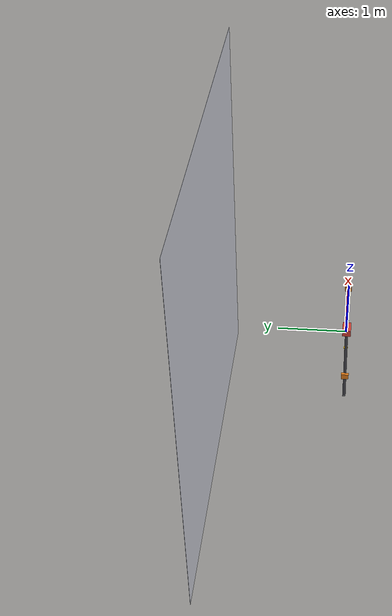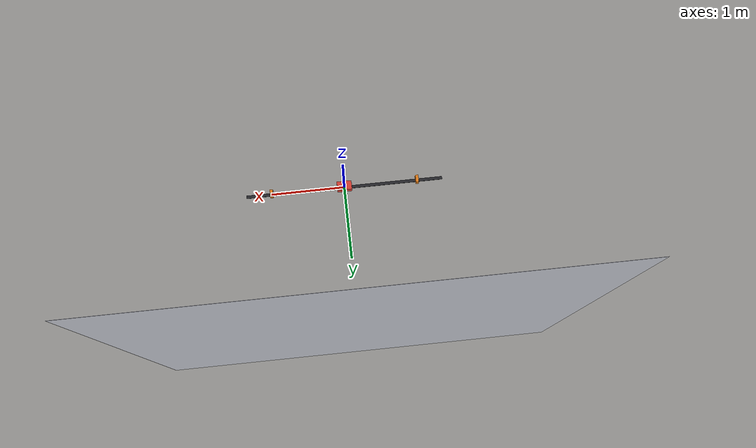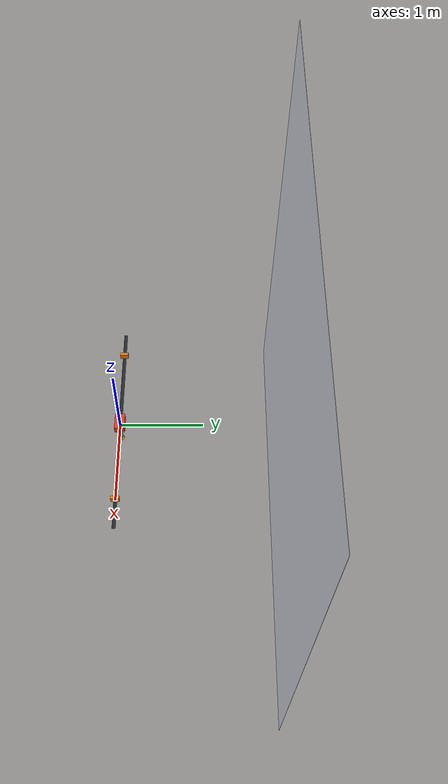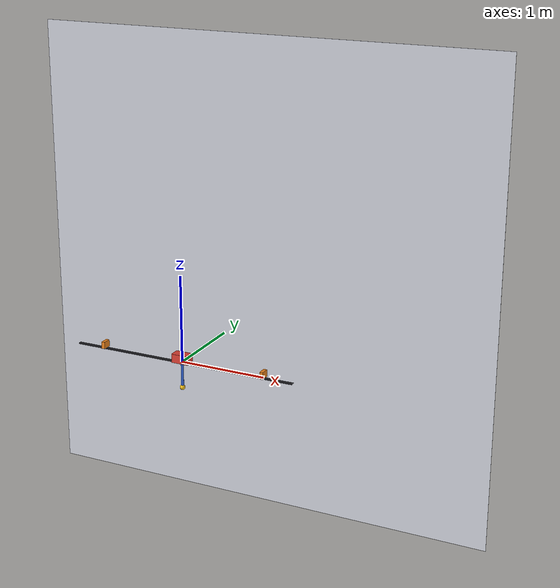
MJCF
<mujoco model="cartpole">
  <compiler angle="radian" coordinate="local"/>
  <option timestep="0.002" gravity="0 0 -9.81" integrator="RK4"/>

  <default>
    <geom contype="0" conaffinity="0"/>
  </default>

  <visual>
    <global offwidth="480" offheight="480"/>
  </visual>

  <asset>
    <texture name="sky_tex" type="skybox" builtin="gradient"
              rgb1="0.55 0.65 0.85" rgb2="0.92 0.93 0.97" width="256" height="256"/>

    <!-- Checker backdrop: fine periodic texture gives the encoder dense local
         gradient/edge cues to lock onto for sub-tile position precision. -->
    <texture name="grid_tex" type="2d" builtin="checker"
             rgb1="0.88 0.88 0.90" rgb2="0.72 0.74 0.80" width="800" height="800" mark="none"/>
    <material name="grid_mat" texture="grid_tex" texrepeat="5 7" texuniform="true"
              specular="0.05" shininess="0.03" reflectance="0.0"/>

    <material name="rail_mat"   rgba="0.15 0.15 0.17 1"/>
    <material name="cart_mat"   rgba="0.85 0.25 0.20 1"/>
    <material name="pole_mat"   rgba="0.20 0.40 0.85 1"/>
    <material name="tip_mat"    rgba="0.95 0.75 0.10 1"/>
    <material name="center_mat" rgba="0.15 0.70 0.35 1"/>
    <material name="bumper_mat" rgba="0.90 0.50 0.10 1"/>
  </asset>

  <worldbody>
    <light name="key" pos="0 -2.5 2.5" dir="0 0.6 -1" diffuse="1 1 1" specular="0.1 0.1 0.1"/>

    <geom name="backdrop" type="plane" pos="0 2.0 0.35" euler="1.57079632679 0 0"
          size="3.0 3.0 0.02" material="grid_mat"/>

    <!-- Track rail, drawn as a thin bar so the cart's baseline is always visible. -->
    <geom name="rail" type="box" pos="0 0 -0.005" size="1.35 0.02 0.005" material="rail_mat"/>

    <!-- Aperiodic landmarks: these break the checker's translational symmetry so
         absolute position is unambiguous, not just position-modulo-one-tile. -->
    <!-- TODO: Change limit based on initial controller output, to get most details in frame-->
    <geom name="center_mark" type="box" pos="0 0.01 0.001" size="0.015 0.01 0.002" material="center_mat"/>
    <geom name="bumper_left"  type="box" pos="-1.0 0 0.04" size="0.02 0.05 0.04" material="bumper_mat"/>
    <geom name="bumper_right" type="box" pos=" 1.0 0 0.04" size="0.02 0.05 0.04" material="bumper_mat"/>

    <camera name="side" pos="0 -3.2 0.55" xyaxes="1 0 0 0 0 1"/>

    <body name="cart" pos="0 0 0.05">
      <joint name="slider" type="slide" axis="1 0 0" range="-0.94 0.9" limited="true" damping="0.05"/>
      <geom name="cart_geom" type="box" size="0.1 0.06 0.05" material="cart_mat" mass="1.0"/>

      <body name="pole" pos="0 0 0.05">
        <!-- hinge angle 0 = hanging straight down (stable rest); pi = upright. -->
        <joint name="hinge" type="hinge" axis="0 1 0" damping="0.01"/>
        <geom name="pole_geom" type="capsule" fromto="0 0 0 0 0 -0.4" size="0.015" material="pole_mat" mass="0.1"/>
        <geom name="pole_tip" type="sphere" pos="0 0 -0.4" size="0.03" material="tip_mat" mass="0.01"/>
      </body>
    </body>
  </worldbody>

  <actuator>
    <motor name="cart_motor" joint="slider" ctrlrange="-10 10" gear="1"/>
  </actuator>
</mujoco>
